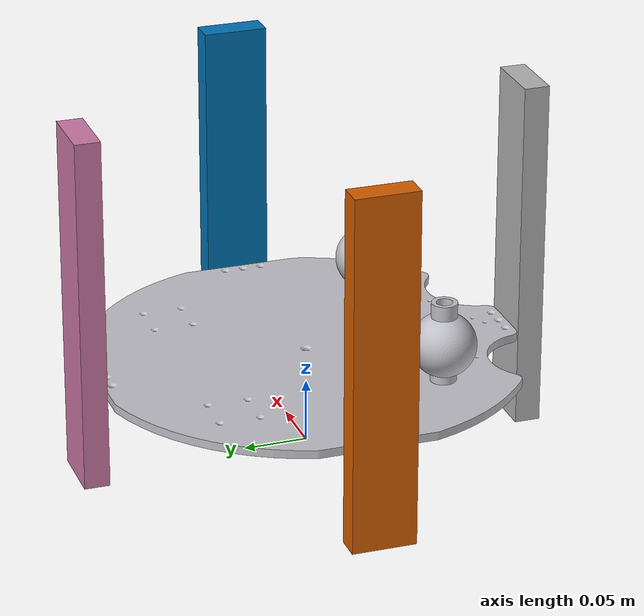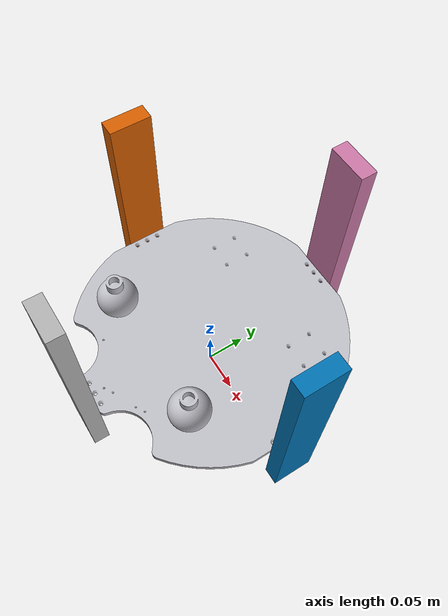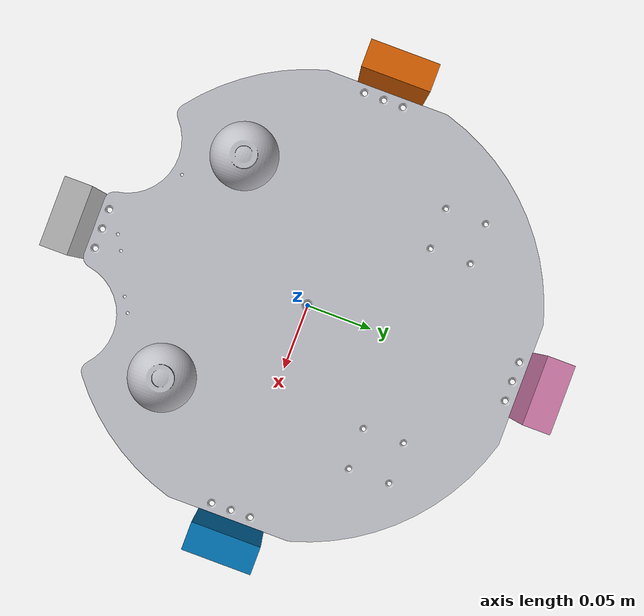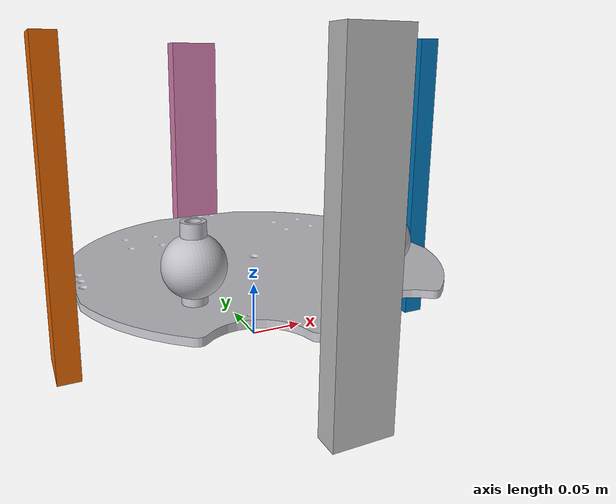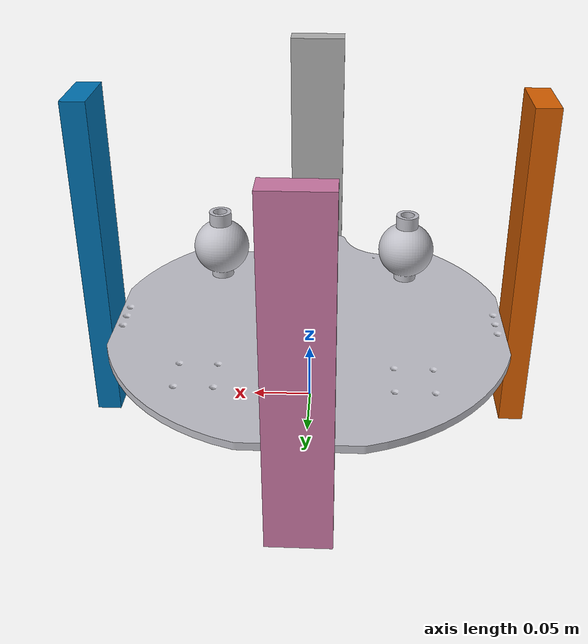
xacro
<?xml version="1.0" ?>
<robot name="arm2d" xmlns:xacro="http://www.ros.org/wiki/xacro">

<xacro:arg name="top_plate" default="false"/>
<xacro:property name="long_l" value="0.02"/>
<xacro:property name="long_w" value="0.05"/>
<xacro:property name="long_h" value="0.279654"/>

<link name="world"/>
<link name="base_link">
  <inertial>
    <origin xyz="-2.154281413321998e-06 0.0035387814754625734 -0.0056639470834143136" rpy="0 0 0"/>
    <mass value="1.5479093566761954"/>
    <inertia ixx="0.010238" iyy="0.01139" izz="0.021617" ixy="-0.0" iyz="0.0" ixz="0.0"/>
  </inertial>
  <visual>
    <origin xyz="0 0 0.0025" rpy="0 0 0"/>
    <geometry>
      <mesh filename="package://arm2d2_description/meshes/base_plate.stl" scale="0.001 0.001 0.001"/>
    </geometry>
    <material name="silver"/>
  </visual>
  <collision>
    <origin xyz="0 0 0.0025" rpy="0 0 0"/>
    <geometry>
      <mesh filename="package://arm2d2_description/meshes/base_plate.stl" scale="0.001 0.001 0.001"/>
    </geometry>
  </collision>
</link>

<joint name="world_joint" type="fixed">
  <origin xyz="0 0.0025 0.078232" rpy="0 0 0"/>
  <parent link="world"/>
  <child link="base_link"/>
</joint>

<link name="gripper_mount_l">
  <inertial>
    <origin xyz="0.060099999999972134 -0.08246115124410087 0.038698562774923354" rpy="0 0 0"/>
    <mass value="0.06861748378285525"/>
    <inertia ixx="1.9e-05" iyy="1.9e-05" izz="1.7e-05" ixy="0.0" iyz="0.0" ixz="-0.0"/>
  </inertial>

  <visual>
    <origin xyz="-0.0 3e-06 0.011329" rpy="0 0 0"/>
    <geometry>
      <mesh filename="package://arm2d2_description/meshes/gripper_mount.stl" scale="0.001 0.001 0.001"/>
    </geometry>
    <material name="silver"/>
  </visual>
</link>

<joint name="gripper_mount_l_joint" type="fixed">
  <origin xyz="-0.145 -8e-06 -0.008829" rpy="0 0 0"/>
  <parent link="base_link"/>
  <child link="gripper_mount_l"/>
</joint>

<link name="gripper_mount_r">
  <inertial>
    <origin xyz="0.060099999999972134 -0.08246115124410087 0.038698562774923354" rpy="0 0 0"/>
    <mass value="0.06861748378285525"/>
    <inertia ixx="1.9e-05" iyy="1.9e-05" izz="1.7e-05" ixy="0.0" iyz="0.0" ixz="-0.0"/>
  </inertial>
  <visual>
    <origin xyz="-0.0 3e-06 0.011329" rpy="0 0 0"/>
    <geometry>
      <mesh filename="package://arm2d2_description/meshes/gripper_mount.stl" scale="0.001 0.001 0.001"/>
    </geometry>
    <material name="silver"/>
  </visual>
</link>

<joint name="gripper_mount_r_joint" type="fixed">
  <origin xyz="0.025 -8e-06 -0.008829" rpy="0 0 0"/>
  <parent link="base_link"/>
  <child link="gripper_mount_r"/>
</joint>
<link name="longeron_1">
  <visual>
    <origin xyz="0 0 0" rpy="0 0 0"/>
    <geometry>
      <box size="${long_l} ${long_w} ${long_h}"/>
    </geometry>
  </visual>
</link>

<joint name="longeron_1_j" type="fixed">
  <origin xyz="0.175 0 0.0616" rpy="0 0 0"/>
  <parent link="base_link"/>
  <child link="longeron_1"/>
</joint>

<link name="longeron_2">
  <visual>
    <origin xyz="0 0 0" rpy="0 0 0"/>
    <geometry>
      <box size="${long_l} ${long_w} ${long_h}"/>
    </geometry>
  </visual>
</link>

<joint name="longeron_2_j" type="fixed">
  <origin xyz="-0.175 0 0.0616" rpy="0 0 0"/>
  <parent link="base_link"/>
  <child link="longeron_2"/>
</joint>

<link name="longeron_3">
  <visual>
    <origin xyz="0 0 0" rpy="0 0 0"/>
    <geometry>
      <box size="${long_w} ${long_l} ${long_h}"/>
    </geometry>
  </visual>
</link>

<joint name="longeron_3_j" type="fixed">
  <origin xyz="0 0.1725 0.0616" rpy="0 0 0"/>
  <parent link="base_link"/>
  <child link="longeron_3"/>
</joint>

<link name="longeron_4">
  <visual>
    <origin xyz="0 0 0" rpy="0 0 0"/>
    <geometry>
      <box size="${long_w} ${long_l} ${long_h}"/>
    </geometry>
  </visual>
</link>

<joint name="longeron_4_j" type="fixed">
  <origin xyz="0 -0.1775 0.0616" rpy="0 0 0"/>
  <parent link="base_link"/>
  <child link="longeron_4"/>
</joint>

<xacro:if value="$(arg top_plate)">
  <link name="top_plate">
    <inertial>
      <origin rpy="0 0 0" xyz="-2.160592513816839e-06 0.006014994682341276 -0.0033018459554867265"/>
      <mass value="1.5433879121893925"/>
      <inertia ixx="0.010217" ixy="-0.0" ixz="0.0" iyy="0.011371" iyz="-0.0" izz="0.021576"/>
    </inertial>
    <visual>
      <origin rpy="0 0 0" xyz="-0.068617 0.090846 -0.0"/>
      <geometry>
        <mesh filename="package://arm2d2_description/meshes/base_plate.stl" scale="0.001 0.001 0.001"/>
      </geometry>
      <material name="silver"/>
    </visual>
  </link>

  <joint name="top_plate_joint" type="fixed">
    <origin rpy="0 0 0" xyz="0.068617 -0.090846 0.215"/>
    <parent link="base_link"/>
    <child link="top_plate"/>
  </joint>
</xacro:if>

</robot>
